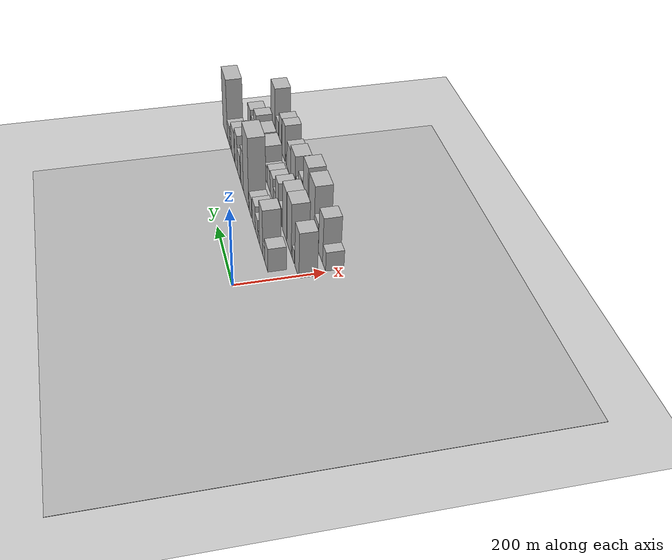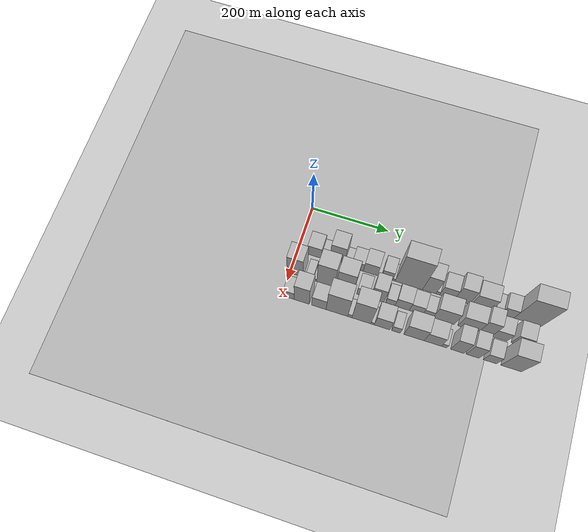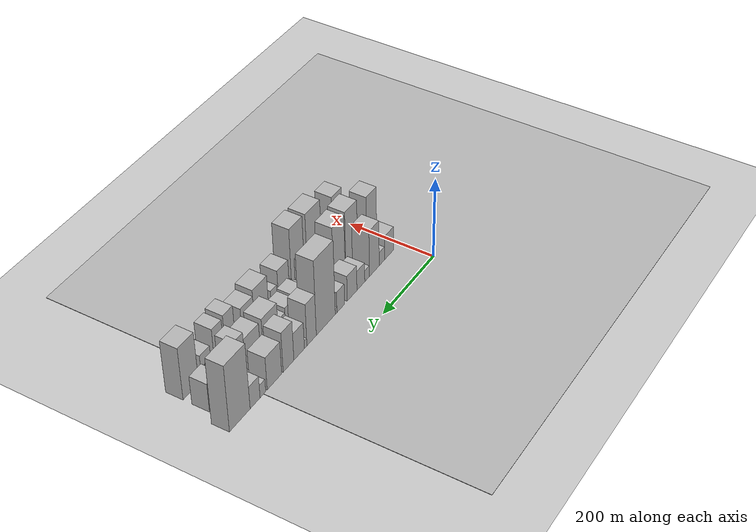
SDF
<sdf version="1.6">
 <world name="default">
  <include><name>ground_plane_1</name><uri>model://HANNAS_ground_plane</uri></include>
  <include>
   <name>ground_plane_2</name>
   <uri>model://HANNAS_ground_plane</uri>
   <pose>100 0 0  0 0 0</pose>
  </include>
  <model name="building_18">
   <static>1</static>
   <pose>100.0000 43.6030 0 0.000000 0.000000 0.000000</pose>
   <link name="link">
    <pose>0 0 31.50 0 0 0</pose>
    <collision name="collision"><geometry><box><size>40.0000 36.1499 63.0000</size></box></geometry></collision>
    <visual name="visual">
     <cast_shadows>0</cast_shadows>
     <geometry><box><size>40.0000 36.1499 63.0000</size></box></geometry>
     <material>
      <script>
       <uri>model://HANNAS_wall/materials/scripts</uri>
       <uri>model://HANNAS_wall/materials/textures</uri>
       <name>vrc/HANNAS_wall</name>
      </script>
     </material>
    </visual>
   </link>
  </model>
  <model name="building_19">
   <static>1</static>
   <pose>100.0000 72.2824 0 0.000000 0.000000 0.000000</pose>
   <link name="link">
    <pose>0 0 18.00 0 0 0</pose>
    <collision name="collision"><geometry><box><size>40.0000 21.2088 36.0000</size></box></geometry></collision>
    <visual name="visual">
     <cast_shadows>0</cast_shadows>
     <geometry><box><size>40.0000 21.2088 36.0000</size></box></geometry>
     <material>
      <script>
       <uri>model://HANNAS_wall/materials/scripts</uri>
       <uri>model://HANNAS_wall/materials/textures</uri>
       <name>vrc/HANNAS_wall</name>
      </script>
     </material>
    </visual>
   </link>
  </model>
  <model name="building_20">
   <static>1</static>
   <pose>100.0000 101.8695 0 0.000000 0.000000 0.000000</pose>
   <link name="link">
    <pose>0 0 60.00 0 0 0</pose>
    <collision name="collision"><geometry><box><size>40.0000 37.9655 120.0000</size></box></geometry></collision>
    <visual name="visual">
     <cast_shadows>0</cast_shadows>
     <geometry><box><size>40.0000 37.9655 120.0000</size></box></geometry>
     <material>
      <script>
       <uri>model://HANNAS_wall/materials/scripts</uri>
       <uri>model://HANNAS_wall/materials/textures</uri>
       <name>vrc/HANNAS_wall</name>
      </script>
     </material>
    </visual>
   </link>
  </model>
  <model name="building_21">
   <static>1</static>
   <pose>100.0000 129.8456 0 0.000000 0.000000 0.000000</pose>
   <link name="link">
    <pose>0 0 15.00 0 0 0</pose>
    <collision name="collision"><geometry><box><size>40.0000 17.9866 30.0000</size></box></geometry></collision>
    <visual name="visual">
     <cast_shadows>0</cast_shadows>
     <geometry><box><size>40.0000 17.9866 30.0000</size></box></geometry>
     <material>
      <script>
       <uri>model://HANNAS_wall/materials/scripts</uri>
       <uri>model://HANNAS_wall/materials/textures</uri>
       <name>vrc/HANNAS_wall</name>
      </script>
     </material>
    </visual>
   </link>
  </model>
  <model name="building_22">
   <static>1</static>
   <pose>100.0000 153.8802 0 0.000000 0.000000 0.000000</pose>
   <link name="link">
    <pose>0 0 25.50 0 0 0</pose>
    <collision name="collision"><geometry><box><size>40.0000 30.0826 51.0000</size></box></geometry></collision>
    <visual name="visual">
     <cast_shadows>0</cast_shadows>
     <geometry><box><size>40.0000 30.0826 51.0000</size></box></geometry>
     <material>
      <script>
       <uri>model://HANNAS_wall/materials/scripts</uri>
       <uri>model://HANNAS_wall/materials/textures</uri>
       <name>vrc/HANNAS_wall</name>
      </script>
     </material>
    </visual>
   </link>
  </model>
  <model name="building_23">
   <static>1</static>
   <pose>100.0000 187.1599 0 0.000000 0.000000 0.000000</pose>
   <link name="link">
    <pose>0 0 33.00 0 0 0</pose>
    <collision name="collision"><geometry><box><size>40.0000 36.4768 66.0000</size></box></geometry></collision>
    <visual name="visual">
     <cast_shadows>0</cast_shadows>
     <geometry><box><size>40.0000 36.4768 66.0000</size></box></geometry>
     <material>
      <script>
       <uri>model://HANNAS_wall/materials/scripts</uri>
       <uri>model://HANNAS_wall/materials/textures</uri>
       <name>vrc/HANNAS_wall</name>
      </script>
     </material>
    </visual>
   </link>
  </model>
  <model name="building_24">
   <static>1</static>
   <pose>100.0000 229.6737 0 0.000000 0.000000 0.000000</pose>
   <link name="link">
    <pose>0 0 27.00 0 0 0</pose>
    <collision name="collision"><geometry><box><size>40.0000 28.5508 54.0000</size></box></geometry></collision>
    <visual name="visual">
     <cast_shadows>0</cast_shadows>
     <geometry><box><size>40.0000 28.5508 54.0000</size></box></geometry>
     <material>
      <script>
       <uri>model://HANNAS_wall/materials/scripts</uri>
       <uri>model://HANNAS_wall/materials/textures</uri>
       <name>vrc/HANNAS_wall</name>
      </script>
     </material>
    </visual>
   </link>
  </model>
  <model name="building_25">
   <static>1</static>
   <pose>100.0000 247.0251 0 0.000000 0.000000 0.000000</pose>
   <link name="link">
    <pose>0 0 7.50 0 0 0</pose>
    <collision name="collision"><geometry><box><size>40.0000 6.1520 15.0000</size></box></geometry></collision>
    <visual name="visual">
     <cast_shadows>0</cast_shadows>
     <geometry><box><size>40.0000 6.1520 15.0000</size></box></geometry>
     <material>
      <script>
       <uri>model://HANNAS_wall/materials/scripts</uri>
       <uri>model://HANNAS_wall/materials/textures</uri>
       <name>vrc/HANNAS_wall</name>
      </script>
     </material>
    </visual>
   </link>
  </model>
  <model name="building_26">
   <static>1</static>
   <pose>100.0000 284.4919 0 0.000000 0.000000 0.000000</pose>
   <link name="link">
    <pose>0 0 96.00 0 0 0</pose>
    <collision name="collision"><geometry><box><size>40.0000 68.7816 192.0000</size></box></geometry></collision>
    <visual name="visual">
     <cast_shadows>0</cast_shadows>
     <geometry><box><size>40.0000 68.7816 192.0000</size></box></geometry>
     <material>
      <script>
       <uri>model://HANNAS_wall/materials/scripts</uri>
       <uri>model://HANNAS_wall/materials/textures</uri>
       <name>vrc/HANNAS_wall</name>
      </script>
     </material>
    </visual>
   </link>
  </model>
  <model name="building_27">
   <static>1</static>
   <pose>100.0000 335.6351 0 0.000000 0.000000 0.000000</pose>
   <link name="link">
    <pose>0 0 54.00 0 0 0</pose>
    <collision name="collision"><geometry><box><size>40.0000 33.5049 108.0000</size></box></geometry></collision>
    <visual name="visual">
     <cast_shadows>0</cast_shadows>
     <geometry><box><size>40.0000 33.5049 108.0000</size></box></geometry>
     <material>
      <script>
       <uri>model://HANNAS_wall/materials/scripts</uri>
       <uri>model://HANNAS_wall/materials/textures</uri>
       <name>vrc/HANNAS_wall</name>
      </script>
     </material>
    </visual>
   </link>
  </model>
  <model name="building_28">
   <static>1</static>
   <pose>100.0000 356.8194 0 0.000000 0.000000 0.000000</pose>
   <link name="link">
    <pose>0 0 10.50 0 0 0</pose>
    <collision name="collision"><geometry><box><size>40.0000 8.8637 21.0000</size></box></geometry></collision>
    <visual name="visual">
     <cast_shadows>0</cast_shadows>
     <geometry><box><size>40.0000 8.8637 21.0000</size></box></geometry>
     <material>
      <script>
       <uri>model://HANNAS_wall/materials/scripts</uri>
       <uri>model://HANNAS_wall/materials/textures</uri>
       <name>vrc/HANNAS_wall</name>
      </script>
     </material>
    </visual>
   </link>
  </model>
  <model name="building_29">
   <static>1</static>
   <pose>100.0000 379.5728 0 0.000000 0.000000 0.000000</pose>
   <link name="link">
    <pose>0 0 34.50 0 0 0</pose>
    <collision name="collision"><geometry><box><size>40.0000 36.6431 69.0000</size></box></geometry></collision>
    <visual name="visual">
     <cast_shadows>0</cast_shadows>
     <geometry><box><size>40.0000 36.6431 69.0000</size></box></geometry>
     <material>
      <script>
       <uri>model://HANNAS_wall/materials/scripts</uri>
       <uri>model://HANNAS_wall/materials/textures</uri>
       <name>vrc/HANNAS_wall</name>
      </script>
     </material>
    </visual>
   </link>
  </model>
  <model name="building_30">
   <static>1</static>
   <pose>100.0000 416.3446 0 0.000000 0.000000 0.000000</pose>
   <link name="link">
    <pose>0 0 51.00 0 0 0</pose>
    <collision name="collision"><geometry><box><size>40.0000 36.9004 102.0000</size></box></geometry></collision>
    <visual name="visual">
     <cast_shadows>0</cast_shadows>
     <geometry><box><size>40.0000 36.9004 102.0000</size></box></geometry>
     <material>
      <script>
       <uri>model://HANNAS_wall/materials/scripts</uri>
       <uri>model://HANNAS_wall/materials/textures</uri>
       <name>vrc/HANNAS_wall</name>
      </script>
     </material>
    </visual>
   </link>
  </model>
  <model name="building_31">
   <static>1</static>
   <pose>100.0000 464.2166 0 0.000000 0.000000 0.000000</pose>
   <link name="link">
    <pose>0 0 42.00 0 0 0</pose>
    <collision name="collision"><geometry><box><size>40.0000 48.8437 84.0000</size></box></geometry></collision>
    <visual name="visual">
     <cast_shadows>0</cast_shadows>
     <geometry><box><size>40.0000 48.8437 84.0000</size></box></geometry>
     <material>
      <script>
       <uri>model://HANNAS_wall/materials/scripts</uri>
       <uri>model://HANNAS_wall/materials/textures</uri>
       <name>vrc/HANNAS_wall</name>
      </script>
     </material>
    </visual>
   </link>
  </model>
  <model name="building_32">
   <static>1</static>
   <pose>100.0000 502.9277 0 0.000000 0.000000 0.000000</pose>
   <link name="link">
    <pose>0 0 16.50 0 0 0</pose>
    <collision name="collision"><geometry><box><size>40.0000 18.5784 33.0000</size></box></geometry></collision>
    <visual name="visual">
     <cast_shadows>0</cast_shadows>
     <geometry><box><size>40.0000 18.5784 33.0000</size></box></geometry>
     <material>
      <script>
       <uri>model://HANNAS_wall/materials/scripts</uri>
       <uri>model://HANNAS_wall/materials/textures</uri>
       <name>vrc/HANNAS_wall</name>
      </script>
     </material>
    </visual>
   </link>
  </model>
  <model name="building_33">
   <static>1</static>
   <pose>100.0000 528.4617 0 0.000000 0.000000 0.000000</pose>
   <link name="link">
    <pose>0 0 28.50 0 0 0</pose>
    <collision name="collision"><geometry><box><size>40.0000 32.4897 57.0000</size></box></geometry></collision>
    <visual name="visual">
     <cast_shadows>0</cast_shadows>
     <geometry><box><size>40.0000 32.4897 57.0000</size></box></geometry>
     <material>
      <script>
       <uri>model://HANNAS_wall/materials/scripts</uri>
       <uri>model://HANNAS_wall/materials/textures</uri>
       <name>vrc/HANNAS_wall</name>
      </script>
     </material>
    </visual>
   </link>
  </model>
  <model name="building_34">
   <static>1</static>
   <pose>100.0000 577.9212 0 0.000000 0.000000 0.000000</pose>
   <link name="link">
    <pose>0 0 84.00 0 0 0</pose>
    <collision name="collision"><geometry><box><size>40.0000 66.4292 168.0000</size></box></geometry></collision>
    <visual name="visual">
     <cast_shadows>0</cast_shadows>
     <geometry><box><size>40.0000 66.4292 168.0000</size></box></geometry>
     <material>
      <script>
       <uri>model://HANNAS_wall/materials/scripts</uri>
       <uri>model://HANNAS_wall/materials/textures</uri>
       <name>vrc/HANNAS_wall</name>
      </script>
     </material>
    </visual>
   </link>
  </model>
  <model name="building_53">
   <static>1</static>
   <pose>160.0000 13.5653 0 0.000000 0.000000 0.000000</pose>
   <link name="link">
    <pose>0 0 60.00 0 0 0</pose>
    <collision name="collision"><geometry><box><size>40.0000 40.3727 120.0000</size></box></geometry></collision>
    <visual name="visual">
     <cast_shadows>0</cast_shadows>
     <geometry><box><size>40.0000 40.3727 120.0000</size></box></geometry>
     <material>
      <script>
       <uri>model://HANNAS_wall/materials/scripts</uri>
       <uri>model://HANNAS_wall/materials/textures</uri>
       <name>vrc/HANNAS_wall</name>
      </script>
     </material>
    </visual>
   </link>
  </model>
  <model name="building_54">
   <static>1</static>
   <pose>160.0000 50.6048 0 0.000000 0.000000 0.000000</pose>
   <link name="link">
    <pose>0 0 18.00 0 0 0</pose>
    <collision name="collision"><geometry><box><size>40.0000 19.7062 36.0000</size></box></geometry></collision>
    <visual name="visual">
     <cast_shadows>0</cast_shadows>
     <geometry><box><size>40.0000 19.7062 36.0000</size></box></geometry>
     <material>
      <script>
       <uri>model://HANNAS_wall/materials/scripts</uri>
       <uri>model://HANNAS_wall/materials/textures</uri>
       <name>vrc/HANNAS_wall</name>
      </script>
     </material>
    </visual>
   </link>
  </model>
  <model name="building_55">
   <static>1</static>
   <pose>160.0000 64.6879 0 0.000000 0.000000 0.000000</pose>
   <link name="link">
    <pose>0 0 9.00 0 0 0</pose>
    <collision name="collision"><geometry><box><size>40.0000 8.4601 18.0000</size></box></geometry></collision>
    <visual name="visual">
     <cast_shadows>0</cast_shadows>
     <geometry><box><size>40.0000 8.4601 18.0000</size></box></geometry>
     <material>
      <script>
       <uri>model://HANNAS_wall/materials/scripts</uri>
       <uri>model://HANNAS_wall/materials/textures</uri>
       <name>vrc/HANNAS_wall</name>
      </script>
     </material>
    </visual>
   </link>
  </model>
  <model name="building_56">
   <static>1</static>
   <pose>160.0000 91.6813 0 0.000000 0.000000 0.000000</pose>
   <link name="link">
    <pose>0 0 69.00 0 0 0</pose>
    <collision name="collision"><geometry><box><size>40.0000 45.5267 138.0000</size></box></geometry></collision>
    <visual name="visual">
     <cast_shadows>0</cast_shadows>
     <geometry><box><size>40.0000 45.5267 138.0000</size></box></geometry>
     <material>
      <script>
       <uri>model://HANNAS_wall/materials/scripts</uri>
       <uri>model://HANNAS_wall/materials/textures</uri>
       <name>vrc/HANNAS_wall</name>
      </script>
     </material>
    </visual>
   </link>
  </model>
  <model name="building_57">
   <static>1</static>
   <pose>160.0000 139.6797 0 0.000000 0.000000 0.000000</pose>
   <link name="link">
    <pose>0 0 66.00 0 0 0</pose>
    <collision name="collision"><geometry><box><size>40.0000 44.4700 132.0000</size></box></geometry></collision>
    <visual name="visual">
     <cast_shadows>0</cast_shadows>
     <geometry><box><size>40.0000 44.4700 132.0000</size></box></geometry>
     <material>
      <script>
       <uri>model://HANNAS_wall/materials/scripts</uri>
       <uri>model://HANNAS_wall/materials/textures</uri>
       <name>vrc/HANNAS_wall</name>
      </script>
     </material>
    </visual>
   </link>
  </model>
  <model name="building_58">
   <static>1</static>
   <pose>160.0000 184.8600 0 0.000000 0.000000 0.000000</pose>
   <link name="link">
    <pose>0 0 25.50 0 0 0</pose>
    <collision name="collision"><geometry><box><size>40.0000 29.8906 51.0000</size></box></geometry></collision>
    <visual name="visual">
     <cast_shadows>0</cast_shadows>
     <geometry><box><size>40.0000 29.8906 51.0000</size></box></geometry>
     <material>
      <script>
       <uri>model://HANNAS_wall/materials/scripts</uri>
       <uri>model://HANNAS_wall/materials/textures</uri>
       <name>vrc/HANNAS_wall</name>
      </script>
     </material>
    </visual>
   </link>
  </model>
  <model name="building_59">
   <static>1</static>
   <pose>160.0000 222.1110 0 0.000000 0.000000 0.000000</pose>
   <link name="link">
    <pose>0 0 46.50 0 0 0</pose>
    <collision name="collision"><geometry><box><size>40.0000 32.6114 93.0000</size></box></geometry></collision>
    <visual name="visual">
     <cast_shadows>0</cast_shadows>
     <geometry><box><size>40.0000 32.6114 93.0000</size></box></geometry>
     <material>
      <script>
       <uri>model://HANNAS_wall/materials/scripts</uri>
       <uri>model://HANNAS_wall/materials/textures</uri>
       <name>vrc/HANNAS_wall</name>
      </script>
     </material>
    </visual>
   </link>
  </model>
  <model name="building_60">
   <static>1</static>
   <pose>160.0000 254.1571 0 0.000000 0.000000 0.000000</pose>
   <link name="link">
    <pose>0 0 21.00 0 0 0</pose>
    <collision name="collision"><geometry><box><size>40.0000 23.4808 42.0000</size></box></geometry></collision>
    <visual name="visual">
     <cast_shadows>0</cast_shadows>
     <geometry><box><size>40.0000 23.4808 42.0000</size></box></geometry>
     <material>
      <script>
       <uri>model://HANNAS_wall/materials/scripts</uri>
       <uri>model://HANNAS_wall/materials/textures</uri>
       <name>vrc/HANNAS_wall</name>
      </script>
     </material>
    </visual>
   </link>
  </model>
  <model name="building_61">
   <static>1</static>
   <pose>160.0000 283.7693 0 0.000000 0.000000 0.000000</pose>
   <link name="link">
    <pose>0 0 31.50 0 0 0</pose>
    <collision name="collision"><geometry><box><size>40.0000 35.7438 63.0000</size></box></geometry></collision>
    <visual name="visual">
     <cast_shadows>0</cast_shadows>
     <geometry><box><size>40.0000 35.7438 63.0000</size></box></geometry>
     <material>
      <script>
       <uri>model://HANNAS_wall/materials/scripts</uri>
       <uri>model://HANNAS_wall/materials/textures</uri>
       <name>vrc/HANNAS_wall</name>
      </script>
     </material>
    </visual>
   </link>
  </model>
  <model name="building_62">
   <static>1</static>
   <pose>160.0000 318.2773 0 0.000000 0.000000 0.000000</pose>
   <link name="link">
    <pose>0 0 28.50 0 0 0</pose>
    <collision name="collision"><geometry><box><size>40.0000 33.2721 57.0000</size></box></geometry></collision>
    <visual name="visual">
     <cast_shadows>0</cast_shadows>
     <geometry><box><size>40.0000 33.2721 57.0000</size></box></geometry>
     <material>
      <script>
       <uri>model://HANNAS_wall/materials/scripts</uri>
       <uri>model://HANNAS_wall/materials/textures</uri>
       <name>vrc/HANNAS_wall</name>
      </script>
     </material>
    </visual>
   </link>
  </model>
  <model name="building_63">
   <static>1</static>
   <pose>160.0000 347.4708 0 0.000000 0.000000 0.000000</pose>
   <link name="link">
    <pose>0 0 22.50 0 0 0</pose>
    <collision name="collision"><geometry><box><size>40.0000 25.1149 45.0000</size></box></geometry></collision>
    <visual name="visual">
     <cast_shadows>0</cast_shadows>
     <geometry><box><size>40.0000 25.1149 45.0000</size></box></geometry>
     <material>
      <script>
       <uri>model://HANNAS_wall/materials/scripts</uri>
       <uri>model://HANNAS_wall/materials/textures</uri>
       <name>vrc/HANNAS_wall</name>
      </script>
     </material>
    </visual>
   </link>
  </model>
  <model name="building_64">
   <static>1</static>
   <pose>160.0000 386.1329 0 0.000000 0.000000 0.000000</pose>
   <link name="link">
    <pose>0 0 45.00 0 0 0</pose>
    <collision name="collision"><geometry><box><size>40.0000 52.2093 90.0000</size></box></geometry></collision>
    <visual name="visual">
     <cast_shadows>0</cast_shadows>
     <geometry><box><size>40.0000 52.2093 90.0000</size></box></geometry>
     <material>
      <script>
       <uri>model://HANNAS_wall/materials/scripts</uri>
       <uri>model://HANNAS_wall/materials/textures</uri>
       <name>vrc/HANNAS_wall</name>
      </script>
     </material>
    </visual>
   </link>
  </model>
  <model name="building_65">
   <static>1</static>
   <pose>160.0000 446.4780 0 0.000000 0.000000 0.000000</pose>
   <link name="link">
    <pose>0 0 43.50 0 0 0</pose>
    <collision name="collision"><geometry><box><size>40.0000 50.4809 87.0000</size></box></geometry></collision>
    <visual name="visual">
     <cast_shadows>0</cast_shadows>
     <geometry><box><size>40.0000 50.4809 87.0000</size></box></geometry>
     <material>
      <script>
       <uri>model://HANNAS_wall/materials/scripts</uri>
       <uri>model://HANNAS_wall/materials/textures</uri>
       <name>vrc/HANNAS_wall</name>
      </script>
     </material>
    </visual>
   </link>
  </model>
  <model name="building_66">
   <static>1</static>
   <pose>160.0000 487.8027 0 0.000000 0.000000 0.000000</pose>
   <link name="link">
    <pose>0 0 52.50 0 0 0</pose>
    <collision name="collision"><geometry><box><size>40.0000 32.1684 105.0000</size></box></geometry></collision>
    <visual name="visual">
     <cast_shadows>0</cast_shadows>
     <geometry><box><size>40.0000 32.1684 105.0000</size></box></geometry>
     <material>
      <script>
       <uri>model://HANNAS_wall/materials/scripts</uri>
       <uri>model://HANNAS_wall/materials/textures</uri>
       <name>vrc/HANNAS_wall</name>
      </script>
     </material>
    </visual>
   </link>
  </model>
  <model name="building_67">
   <static>1</static>
   <pose>160.0000 522.4254 0 0.000000 0.000000 0.000000</pose>
   <link name="link">
    <pose>0 0 31.50 0 0 0</pose>
    <collision name="collision"><geometry><box><size>40.0000 37.0770 63.0000</size></box></geometry></collision>
    <visual name="visual">
     <cast_shadows>0</cast_shadows>
     <geometry><box><size>40.0000 37.0770 63.0000</size></box></geometry>
     <material>
      <script>
       <uri>model://HANNAS_wall/materials/scripts</uri>
       <uri>model://HANNAS_wall/materials/textures</uri>
       <name>vrc/HANNAS_wall</name>
      </script>
     </material>
    </visual>
   </link>
  </model>
  <model name="building_68">
   <static>1</static>
   <pose>160.0000 569.9293 0 0.000000 0.000000 0.000000</pose>
   <link name="link">
    <pose>0 0 36.00 0 0 0</pose>
    <collision name="collision"><geometry><box><size>40.0000 37.9309 72.0000</size></box></geometry></collision>
    <visual name="visual">
     <cast_shadows>0</cast_shadows>
     <geometry><box><size>40.0000 37.9309 72.0000</size></box></geometry>
     <material>
      <script>
       <uri>model://HANNAS_wall/materials/scripts</uri>
       <uri>model://HANNAS_wall/materials/textures</uri>
       <name>vrc/HANNAS_wall</name>
      </script>
     </material>
    </visual>
   </link>
  </model>
  <model name="building_84">
   <static>1</static>
   <pose>220.0000 17.2816 0 0.000000 0.000000 0.000000</pose>
   <link name="link">
    <pose>0 0 25.50 0 0 0</pose>
    <collision name="collision"><geometry><box><size>40.0000 27.7496 51.0000</size></box></geometry></collision>
    <visual name="visual">
     <cast_shadows>0</cast_shadows>
     <geometry><box><size>40.0000 27.7496 51.0000</size></box></geometry>
     <material>
      <script>
       <uri>model://HANNAS_wall/materials/scripts</uri>
       <uri>model://HANNAS_wall/materials/textures</uri>
       <name>vrc/HANNAS_wall</name>
      </script>
     </material>
    </visual>
   </link>
  </model>
  <model name="building_85">
   <static>1</static>
   <pose>220.0000 50.1476 0 0.000000 0.000000 0.000000</pose>
   <link name="link">
    <pose>0 0 60.00 0 0 0</pose>
    <collision name="collision"><geometry><box><size>40.0000 37.9823 120.0000</size></box></geometry></collision>
    <visual name="visual">
     <cast_shadows>0</cast_shadows>
     <geometry><box><size>40.0000 37.9823 120.0000</size></box></geometry>
     <material>
      <script>
       <uri>model://HANNAS_wall/materials/scripts</uri>
       <uri>model://HANNAS_wall/materials/textures</uri>
       <name>vrc/HANNAS_wall</name>
      </script>
     </material>
    </visual>
   </link>
  </model>
  <model name="building_86">
   <static>1</static>
   <pose>220.0000 93.3465 0 0.000000 0.000000 0.000000</pose>
   <link name="link">
    <pose>0 0 36.00 0 0 0</pose>
    <collision name="collision"><geometry><box><size>40.0000 36.4155 72.0000</size></box></geometry></collision>
    <visual name="visual">
     <cast_shadows>0</cast_shadows>
     <geometry><box><size>40.0000 36.4155 72.0000</size></box></geometry>
     <material>
      <script>
       <uri>model://HANNAS_wall/materials/scripts</uri>
       <uri>model://HANNAS_wall/materials/textures</uri>
       <name>vrc/HANNAS_wall</name>
      </script>
     </material>
    </visual>
   </link>
  </model>
  <model name="building_87">
   <static>1</static>
   <pose>220.0000 138.5510 0 0.000000 0.000000 0.000000</pose>
   <link name="link">
    <pose>0 0 72.00 0 0 0</pose>
    <collision name="collision"><geometry><box><size>40.0000 53.9936 144.0000</size></box></geometry></collision>
    <visual name="visual">
     <cast_shadows>0</cast_shadows>
     <geometry><box><size>40.0000 53.9936 144.0000</size></box></geometry>
     <material>
      <script>
       <uri>model://HANNAS_wall/materials/scripts</uri>
       <uri>model://HANNAS_wall/materials/textures</uri>
       <name>vrc/HANNAS_wall</name>
      </script>
     </material>
    </visual>
   </link>
  </model>
  <model name="building_88">
   <static>1</static>
   <pose>220.0000 170.7765 0 0.000000 0.000000 0.000000</pose>
   <link name="link">
    <pose>0 0 12.00 0 0 0</pose>
    <collision name="collision"><geometry><box><size>40.0000 10.4573 24.0000</size></box></geometry></collision>
    <visual name="visual">
     <cast_shadows>0</cast_shadows>
     <geometry><box><size>40.0000 10.4573 24.0000</size></box></geometry>
     <material>
      <script>
       <uri>model://HANNAS_wall/materials/scripts</uri>
       <uri>model://HANNAS_wall/materials/textures</uri>
       <name>vrc/HANNAS_wall</name>
      </script>
     </material>
    </visual>
   </link>
  </model>
  <model name="building_89">
   <static>1</static>
   <pose>220.0000 199.4719 0 0.000000 0.000000 0.000000</pose>
   <link name="link">
    <pose>0 0 73.50 0 0 0</pose>
    <collision name="collision"><geometry><box><size>40.0000 46.9334 147.0000</size></box></geometry></collision>
    <visual name="visual">
     <cast_shadows>0</cast_shadows>
     <geometry><box><size>40.0000 46.9334 147.0000</size></box></geometry>
     <material>
      <script>
       <uri>model://HANNAS_wall/materials/scripts</uri>
       <uri>model://HANNAS_wall/materials/textures</uri>
       <name>vrc/HANNAS_wall</name>
      </script>
     </material>
    </visual>
   </link>
  </model>
  <model name="building_90">
   <static>1</static>
   <pose>220.0000 227.2236 0 0.000000 0.000000 0.000000</pose>
   <link name="link">
    <pose>0 0 9.00 0 0 0</pose>
    <collision name="collision"><geometry><box><size>40.0000 8.5700 18.0000</size></box></geometry></collision>
    <visual name="visual">
     <cast_shadows>0</cast_shadows>
     <geometry><box><size>40.0000 8.5700 18.0000</size></box></geometry>
     <material>
      <script>
       <uri>model://HANNAS_wall/materials/scripts</uri>
       <uri>model://HANNAS_wall/materials/textures</uri>
       <name>vrc/HANNAS_wall</name>
      </script>
     </material>
    </visual>
   </link>
  </model>
  <model name="building_91">
   <static>1</static>
   <pose>220.0000 250.8714 0 0.000000 0.000000 0.000000</pose>
   <link name="link">
    <pose>0 0 37.50 0 0 0</pose>
    <collision name="collision"><geometry><box><size>40.0000 38.7256 75.0000</size></box></geometry></collision>
    <visual name="visual">
     <cast_shadows>0</cast_shadows>
     <geometry><box><size>40.0000 38.7256 75.0000</size></box></geometry>
     <material>
      <script>
       <uri>model://HANNAS_wall/materials/scripts</uri>
       <uri>model://HANNAS_wall/materials/textures</uri>
       <name>vrc/HANNAS_wall</name>
      </script>
     </material>
    </visual>
   </link>
  </model>
  <model name="building_92">
   <static>1</static>
   <pose>220.0000 284.9764 0 0.000000 0.000000 0.000000</pose>
   <link name="link">
    <pose>0 0 21.00 0 0 0</pose>
    <collision name="collision"><geometry><box><size>40.0000 21.4844 42.0000</size></box></geometry></collision>
    <visual name="visual">
     <cast_shadows>0</cast_shadows>
     <geometry><box><size>40.0000 21.4844 42.0000</size></box></geometry>
     <material>
      <script>
       <uri>model://HANNAS_wall/materials/scripts</uri>
       <uri>model://HANNAS_wall/materials/textures</uri>
       <name>vrc/HANNAS_wall</name>
      </script>
     </material>
    </visual>
   </link>
  </model>
  <model name="building_93">
   <static>1</static>
   <pose>220.0000 329.5134 0 0.000000 0.000000 0.000000</pose>
   <link name="link">
    <pose>0 0 45.00 0 0 0</pose>
    <collision name="collision"><geometry><box><size>40.0000 49.5895 90.0000</size></box></geometry></collision>
    <visual name="visual">
     <cast_shadows>0</cast_shadows>
     <geometry><box><size>40.0000 49.5895 90.0000</size></box></geometry>
     <material>
      <script>
       <uri>model://HANNAS_wall/materials/scripts</uri>
       <uri>model://HANNAS_wall/materials/textures</uri>
       <name>vrc/HANNAS_wall</name>
      </script>
     </material>
    </visual>
   </link>
  </model>
  <model name="building_94">
   <static>1</static>
   <pose>220.0000 375.3095 0 0.000000 0.000000 0.000000</pose>
   <link name="link">
    <pose>0 0 37.50 0 0 0</pose>
    <collision name="collision"><geometry><box><size>40.0000 42.0028 75.0000</size></box></geometry></collision>
    <visual name="visual">
     <cast_shadows>0</cast_shadows>
     <geometry><box><size>40.0000 42.0028 75.0000</size></box></geometry>
     <material>
      <script>
       <uri>model://HANNAS_wall/materials/scripts</uri>
       <uri>model://HANNAS_wall/materials/textures</uri>
       <name>vrc/HANNAS_wall</name>
      </script>
     </material>
    </visual>
   </link>
  </model>
  <model name="building_95">
   <static>1</static>
   <pose>220.0000 402.9028 0 0.000000 0.000000 0.000000</pose>
   <link name="link">
    <pose>0 0 13.50 0 0 0</pose>
    <collision name="collision"><geometry><box><size>40.0000 13.1837 27.0000</size></box></geometry></collision>
    <visual name="visual">
     <cast_shadows>0</cast_shadows>
     <geometry><box><size>40.0000 13.1837 27.0000</size></box></geometry>
     <material>
      <script>
       <uri>model://HANNAS_wall/materials/scripts</uri>
       <uri>model://HANNAS_wall/materials/textures</uri>
       <name>vrc/HANNAS_wall</name>
      </script>
     </material>
    </visual>
   </link>
  </model>
  <model name="building_96">
   <static>1</static>
   <pose>220.0000 434.7959 0 0.000000 0.000000 0.000000</pose>
   <link name="link">
    <pose>0 0 51.00 0 0 0</pose>
    <collision name="collision"><geometry><box><size>40.0000 32.6025 102.0000</size></box></geometry></collision>
    <visual name="visual">
     <cast_shadows>0</cast_shadows>
     <geometry><box><size>40.0000 32.6025 102.0000</size></box></geometry>
     <material>
      <script>
       <uri>model://HANNAS_wall/materials/scripts</uri>
       <uri>model://HANNAS_wall/materials/textures</uri>
       <name>vrc/HANNAS_wall</name>
      </script>
     </material>
    </visual>
   </link>
  </model>
  <model name="building_97">
   <static>1</static>
   <pose>220.0000 471.7259 0 0.000000 0.000000 0.000000</pose>
   <link name="link">
    <pose>0 0 48.00 0 0 0</pose>
    <collision name="collision"><geometry><box><size>40.0000 31.2575 96.0000</size></box></geometry></collision>
    <visual name="visual">
     <cast_shadows>0</cast_shadows>
     <geometry><box><size>40.0000 31.2575 96.0000</size></box></geometry>
     <material>
      <script>
       <uri>model://HANNAS_wall/materials/scripts</uri>
       <uri>model://HANNAS_wall/materials/textures</uri>
       <name>vrc/HANNAS_wall</name>
      </script>
     </material>
    </visual>
   </link>
  </model>
  <model name="building_98">
   <static>1</static>
   <pose>220.0000 513.3874 0 0.000000 0.000000 0.000000</pose>
   <link name="link">
    <pose>0 0 31.50 0 0 0</pose>
    <collision name="collision"><geometry><box><size>40.0000 32.0655 63.0000</size></box></geometry></collision>
    <visual name="visual">
     <cast_shadows>0</cast_shadows>
     <geometry><box><size>40.0000 32.0655 63.0000</size></box></geometry>
     <material>
      <script>
       <uri>model://HANNAS_wall/materials/scripts</uri>
       <uri>model://HANNAS_wall/materials/textures</uri>
       <name>vrc/HANNAS_wall</name>
      </script>
     </material>
    </visual>
   </link>
  </model>
  <model name="building_99">
   <static>1</static>
   <pose>220.0000 564.1428 0 0.000000 0.000000 0.000000</pose>
   <link name="link">
    <pose>0 0 66.00 0 0 0</pose>
    <collision name="collision"><geometry><box><size>40.0000 49.4452 132.0000</size></box></geometry></collision>
    <visual name="visual">
     <cast_shadows>0</cast_shadows>
     <geometry><box><size>40.0000 49.4452 132.0000</size></box></geometry>
     <material>
      <script>
       <uri>model://HANNAS_wall/materials/scripts</uri>
       <uri>model://HANNAS_wall/materials/textures</uri>
       <name>vrc/HANNAS_wall</name>
      </script>
     </material>
    </visual>
   </link>
  </model>
 </world>
</sdf>
